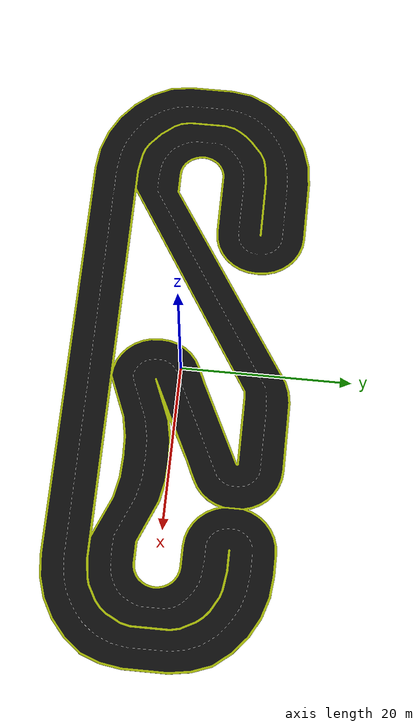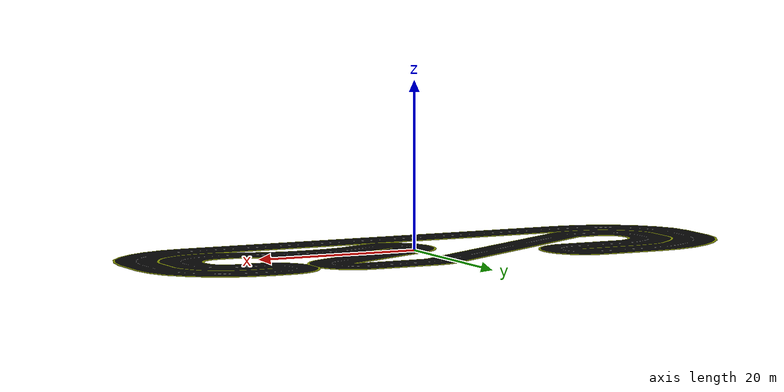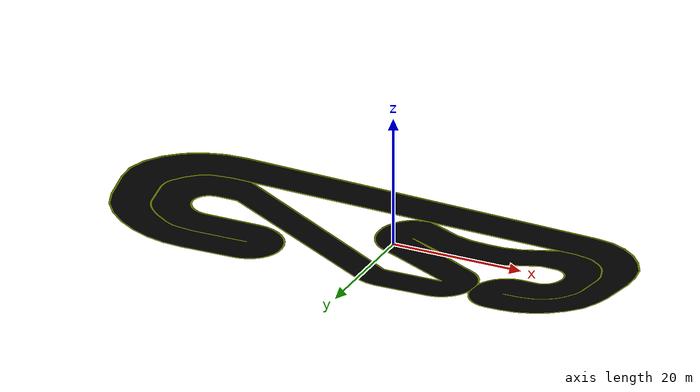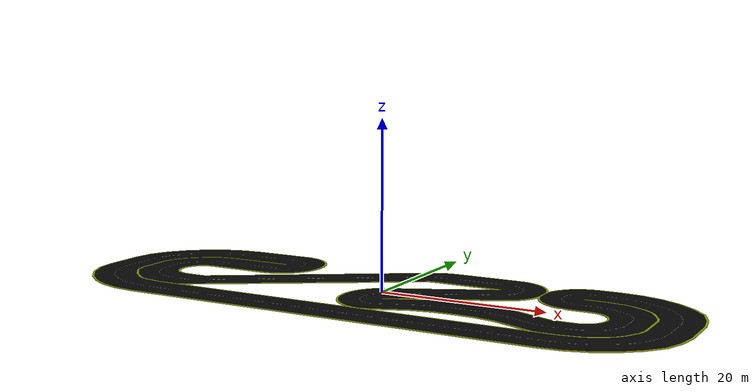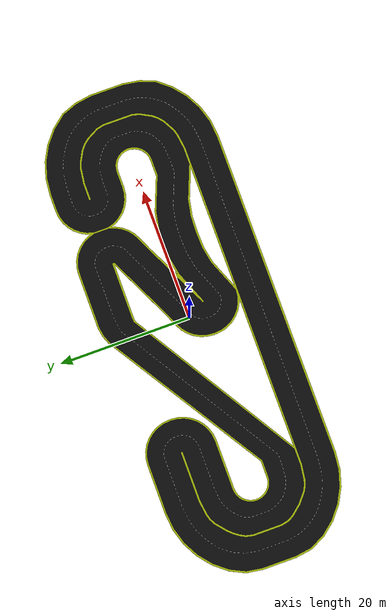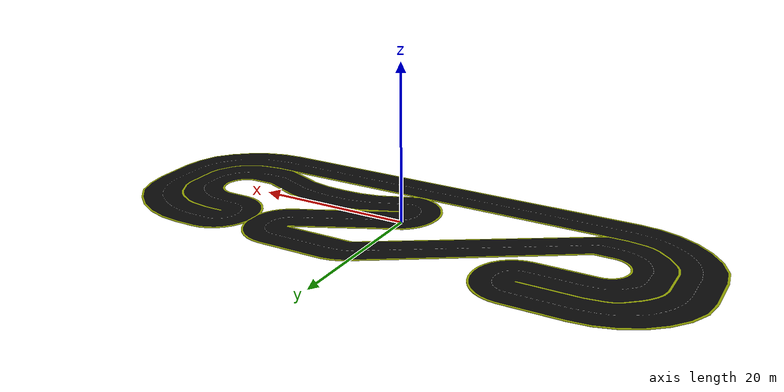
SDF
<?xml version="1.0" ?>
<sdf version="1.6">
  <model name="robocar">
    <static>true</static>

    <link name="link">
      <collision name="collision">
        <geometry>
          <mesh>
            <uri>model://autocone_description/urdf/models/robocar_race/robocar.dae</uri>
          </mesh>
        </geometry>
        <surface>
            <contact>
              <collide_without_contact>true</collide_without_contact>
            </contact>
          </surface>

      </collision>

      <visual name="visual">
        <cast_shadows>true</cast_shadows>
        <geometry>
          <mesh>
            <uri>model://autocone_description/urdf/models/robocar_race/robocar.dae</uri>
          </mesh>
        </geometry>
      </visual>
    </link>
  </model>
</sdf>
